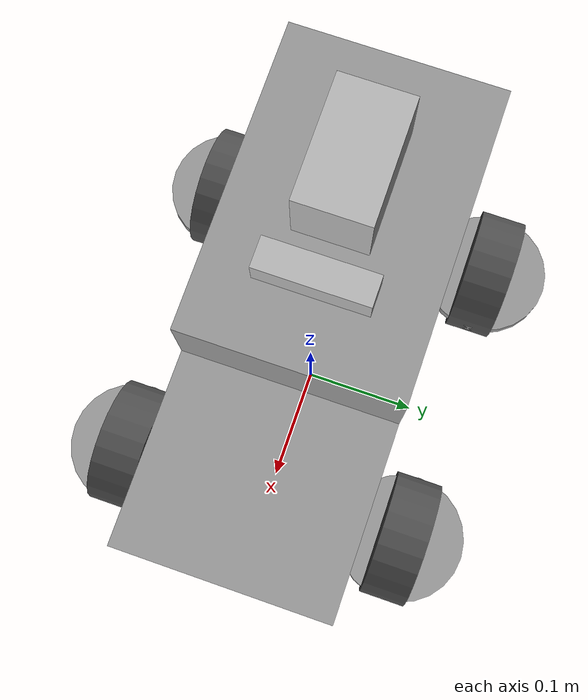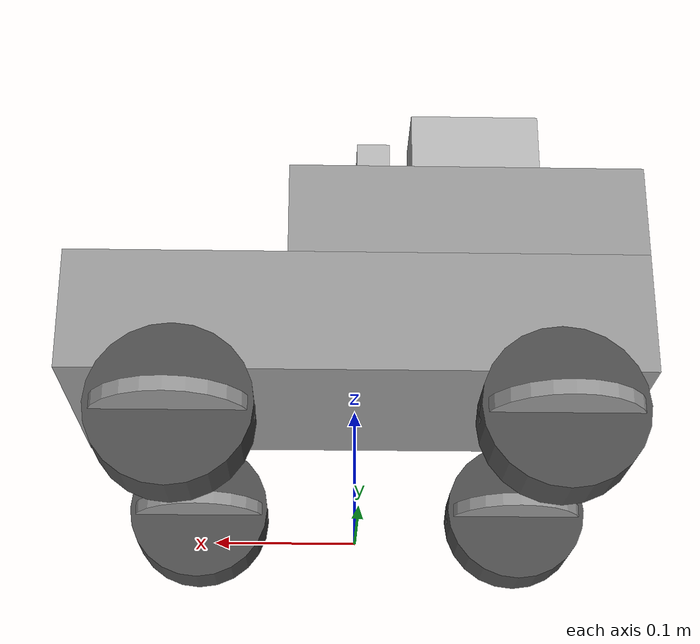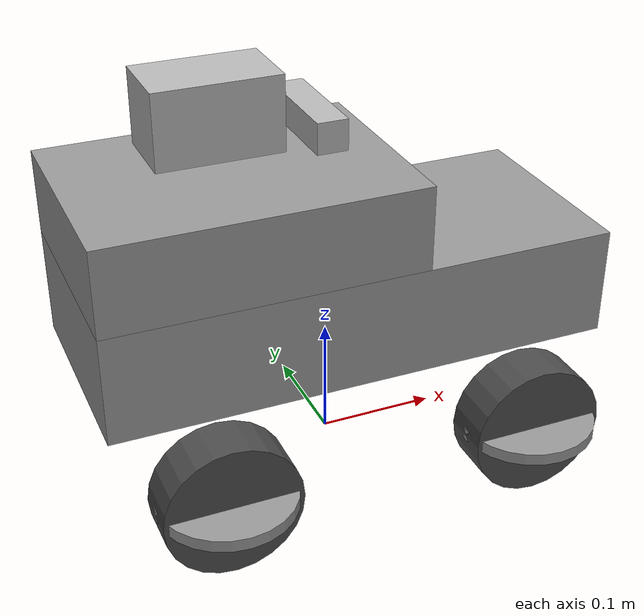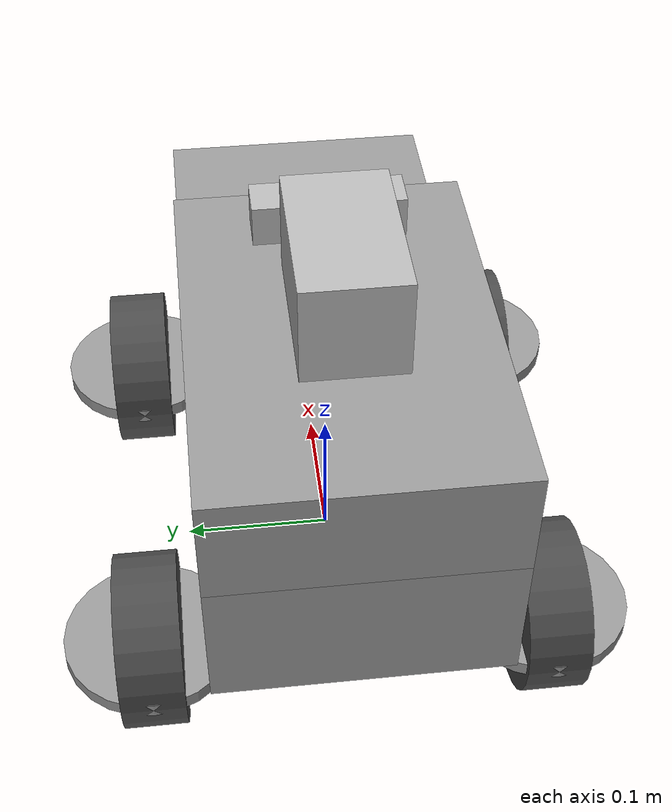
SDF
<sdf version='1.7'>
  <model name='rccar_bronco'>
    <link name='base_link'>
      <inertial>
        <pose>-0.121003 7.1e-05 0.052732 0 -0 0</pose>
        <mass>17.672</mass>
        <inertia>
          <ixx>0.300155</ixx>
          <ixy>-0.000135705</ixy>
          <ixz>0.00746289</ixz>
          <iyy>0.0859612</iyy>
          <iyz>-0.000300847</iyz>
          <izz>0.329304</izz>
        </inertia>
      </inertial>
      <collision name='base_link_collision'>
        <pose>-0.21 -0.09 0.11 0 -0 0</pose>
        <geometry>
          <box>
            <size>0.42 0.18 0.16</size>
          </box>
        </geometry>
        <surface>
          <contact>
            <ode/>
          </contact>
          <friction>
            <ode/>
          </friction>
        </surface>
      </collision>
      <collision name='base_link_fixed_joint_lump__camera_link_collision_1'>
        <pose>-0.0133 0 0.2915 0 -0 0</pose>
        <geometry>
          <box>
            <size>0.02505 0.09 0.025</size>
          </box>
        </geometry>
        <surface>
          <contact>
            <ode/>
          </contact>
          <friction>
            <ode/>
          </friction>
        </surface>
      </collision>
      <collision name='base_link_fixed_joint_lump__rear_left_mount_collision_2'>
        <pose>-0.133 0.126 0.055 0 -0 0</pose>
        <geometry>
          <cylinder>
            <length>0.01</length>
            <radius>0.055</radius>
          </cylinder>
        </geometry>
        <surface>
          <contact>
            <ode/>
          </contact>
          <friction>
            <ode/>
          </friction>
        </surface>
      </collision>
      <collision name='base_link_fixed_joint_lump__rear_right_mount_collision_3'>
        <pose>-0.133 -0.126 0.055 0 -0 0</pose>
        <geometry>
          <cylinder>
            <length>0.01</length>
            <radius>0.055</radius>
          </cylinder>
        </geometry>
        <surface>
          <contact>
            <ode/>
          </contact>
          <friction>
            <ode/>
          </friction>
        </surface>
      </collision>
      <visual name='base_link_visual'>
        <pose>0 0 0.145 0 -0 0</pose>
        <geometry>
          <box>
            <size>0.42 0.18 0.09</size>
          </box>
        </geometry>
        <material>
          <script>
            <name>Gazebo/Grey</name>
            <uri>file://media/materials/scripts/gazebo.material</uri>
          </script>
        </material>
      </visual>
      <visual name='base_link_visual_1'>
        <pose>-0.08 0 0.225 0 -0 0</pose>
        <geometry>
          <box>
            <size>0.26 0.18 0.07</size>
          </box>
        </geometry>
        <material>
          <script>
            <name>Gazebo/Grey</name>
            <uri>file://media/materials/scripts/gazebo.material</uri>
          </script>
        </material>
      </visual>
      <visual name='base_link_fixed_joint_lump__gps_link_visual_2'>
        <pose>0.151 0 0.152 0 -0 0</pose>
        <geometry>
          <box>
            <size>0.055 0.06 0.0225</size>
          </box>
        </geometry>
        <material>
          <script>
            <name>Gazebo/Black</name>
            <uri>file://media/materials/scripts/gazebo.material</uri>
          </script>
        </material>
      </visual>
      <visual name='base_link_fixed_joint_lump__livox_frame_visual_3'>
        <pose>-0.094 0 0.309 0 -0 0</pose>
        <geometry>
          <box>
            <size>0.1 0.06 0.06</size>
          </box>
        </geometry>
      </visual>
      <visual name='base_link_fixed_joint_lump__camera_link_visual_4'>
        <pose>-0.0133 0 0.2915 0 -0 0</pose>
        <geometry>
          <box>
            <size>0.02505 0.09 0.025</size>
          </box>
        </geometry>
      </visual>
      <visual name='base_link_fixed_joint_lump__rear_left_mount_visual_5'>
        <pose>-0.133 0.126 0.055 0 -0 0</pose>
        <geometry>
          <cylinder>
            <length>0.01</length>
            <radius>0.055</radius>
          </cylinder>
        </geometry>
        <material>
          <script>
            <name>Gazebo/Grey</name>
            <uri>file://media/materials/scripts/gazebo.material</uri>
          </script>
        </material>
      </visual>
      <visual name='base_link_fixed_joint_lump__rear_right_mount_visual_6'>
        <pose>-0.133 -0.126 0.055 0 -0 0</pose>
        <geometry>
          <cylinder>
            <length>0.01</length>
            <radius>0.055</radius>
          </cylinder>
        </geometry>
        <material>
          <script>
            <name>Gazebo/Grey</name>
            <uri>file://media/materials/scripts/gazebo.material</uri>
          </script>
        </material>
      </visual>
      <sensor name='ublox_gps' type='gps'>
        <always_on>1</always_on>
        <update_rate>5</update_rate>
        <plugin name='gazebo_ros_gps_sensor' filename='libgazebo_ros_gps_sensor.so'>
          <frame_name>gps_link</frame_name>
          <ros>
            <remapping>~/out:=/gnss/fix_raw</remapping>
          </ros>
        </plugin>
        <pose>0.151 0 0.152 0 -0 0</pose>
      </sensor>
      <gravity>1</gravity>
      <sensor name='bno055_imu' type='imu'>
        <always_on>1</always_on>
        <update_rate>100</update_rate>
        <plugin name='bno055_imu_plugin' filename='libgazebo_ros_imu_sensor.so'>
          <frame_name>imu_link</frame_name>
          <ros>
            <remapping>~/out:=/bno055/imu_raw</remapping>
          </ros>
        </plugin>
        <pose>-0.15 0 0.17 0 -0 0</pose>
      </sensor>
      <gravity>1</gravity>
      <sensor name='lidar_imu' type='imu'>
        <always_on>1</always_on>
        <update_rate>200</update_rate>
        <plugin name='lidar_imu_plugin' filename='libgazebo_ros_imu_sensor.so'>
          <frame_name>livox_frame</frame_name>
          <ros>
            <remapping>~/out:=/lidar/imu_raw</remapping>
          </ros>
        </plugin>
        <pose>-0.094 0 0.309 0 -0 0</pose>
      </sensor>
      <sensor name='livox_frame' type='ray'>
        <visualize>1</visualize>
        <update_rate>10</update_rate>
        <plugin name='livox_frame_plugin' filename='libros2_livox.so'>
          <ray>
            <scan>
              <horizontal>
                <samples>100</samples>
                <resolution>1</resolution>
                <min_angle>0</min_angle>
                <max_angle>6.2831852</max_angle>
              </horizontal>
              <vertical>
                <samples>360</samples>
                <resolution>1</resolution>
                <min_angle>-0.12601276984444446</min_angle>
                <max_angle>0.9637707965111111</max_angle>
              </vertical>
            </scan>
            <range>
              <min>0.1</min>
              <max>200.0</max>
              <resolution>0.002</resolution>
            </range>
            <noise>
              <type>gaussian</type>
              <mean>0.0</mean>
              <stddev>0.01</stddev>
            </noise>
          </ray>
          <visualize>0</visualize>
          <samples>40000</samples>
          <downsample>1</downsample>
          <csv_file_name>/home/docker/mnt/rccar_ws/install/rccar_description/share/rccar_description/scan_mode/mid360.csv</csv_file_name>
          <topic>lidar/points_raw</topic>
        </plugin>
        <pose>-0.094 0 0.309 0 -0 0</pose>
      </sensor>
      <sensor name='cameradepth' type='depth'>
        <camera name='camera'>
          <horizontal_fov>1.57</horizontal_fov>
          <image>
            <width>640</width>
            <height>480</height>
          </image>
          <clip>
            <near>0.1</near>
            <far>100</far>
          </clip>
          <noise>
            <type>gaussian</type>
            <mean>0</mean>
            <stddev>0.1</stddev>
          </noise>
        </camera>
        <always_on>1</always_on>
        <update_rate>30</update_rate>
        <visualize>0</visualize>
        <pose>-0.0133 0.0175 0.2915 0 -0 0</pose>
      </sensor>
      <sensor name='cameracolor' type='camera'>
        <camera name='camera'>
          <horizontal_fov>1.57</horizontal_fov>
          <image>
            <width>640</width>
            <height>480</height>
            <format>RGB_INT8</format>
          </image>
          <clip>
            <near>0.1</near>
            <far>100</far>
          </clip>
          <noise>
            <type>gaussian</type>
            <mean>0</mean>
            <stddev>0.007</stddev>
          </noise>
        </camera>
        <always_on>1</always_on>
        <update_rate>30</update_rate>
        <visualize>1</visualize>
        <pose>-0.0133 0.0175 0.2915 0 -0 0</pose>
      </sensor>
      <sensor name='cameraired1' type='camera'>
        <camera name='camera'>
          <horizontal_fov>1.57</horizontal_fov>
          <image>
            <width>640</width>
            <height>480</height>
            <format>L_INT8</format>
          </image>
          <clip>
            <near>0.1</near>
            <far>100</far>
          </clip>
          <noise>
            <type>gaussian</type>
            <mean>0</mean>
            <stddev>0.05</stddev>
          </noise>
        </camera>
        <always_on>1</always_on>
        <update_rate>1</update_rate>
        <visualize>0</visualize>
        <pose>-0.0133 0.0175 0.2915 0 -0 0</pose>
      </sensor>
      <sensor name='cameraired2' type='camera'>
        <camera name='camera'>
          <horizontal_fov>1.57</horizontal_fov>
          <image>
            <width>640</width>
            <height>480</height>
            <format>L_INT8</format>
          </image>
          <clip>
            <near>0.1</near>
            <far>100</far>
          </clip>
          <noise>
            <type>gaussian</type>
            <mean>0</mean>
            <stddev>0.05</stddev>
          </noise>
        </camera>
        <always_on>1</always_on>
        <update_rate>1</update_rate>
        <visualize>0</visualize>
        <pose>-0.0133 0.0175 0.2915 0 -0 0</pose>
      </sensor>
      <gravity>1</gravity>
      <sensor name='camera_imu' type='imu'>
        <always_on>1</always_on>
        <update_rate>200</update_rate>
        <plugin name='camera_imu_plugin' filename='libgazebo_ros_imu_sensor.so'>
          <frame_name>camera_imu_optical_frame</frame_name>
          <ros>
            <remapping>~/out:=/camera/imu_raw</remapping>
          </ros>
        </plugin>
        <pose>-0.02504 0.01198 0.2966 -1.5708 -0 -1.5708</pose>
      </sensor>
    </link>
    <joint name='front_left_mount_joint' type='revolute'>
      <pose relative_to='base_link'>0.123 0.126 0.055 0 -0 0</pose>
      <parent>base_link</parent>
      <child>front_left_mount</child>
      <axis>
        <xyz>0 0 1</xyz>
        <limit>
          <lower>-0.6458</lower>
          <upper>0.6458</upper>
          <effort>4.2</effort>
          <velocity>6.28</velocity>
        </limit>
        <dynamics>
          <spring_reference>0</spring_reference>
          <spring_stiffness>0</spring_stiffness>
        </dynamics>
      </axis>
    </joint>
    <link name='front_left_mount'>
      <pose relative_to='front_left_mount_joint'>0 0 0 0 -0 0</pose>
      <inertial>
        <pose>0 0 0 0 -0 0</pose>
        <mass>8</mass>
        <inertia>
          <ixx>0.01</ixx>
          <ixy>0</ixy>
          <ixz>0</ixz>
          <iyy>0.01</iyy>
          <iyz>0</iyz>
          <izz>0.01</izz>
        </inertia>
      </inertial>
      <collision name='front_left_mount_collision'>
        <pose>0 0 0 0 -0 0</pose>
        <geometry>
          <cylinder>
            <length>0.01</length>
            <radius>0.055</radius>
          </cylinder>
        </geometry>
        <surface>
          <contact>
            <ode/>
          </contact>
          <friction>
            <ode/>
          </friction>
        </surface>
      </collision>
      <visual name='front_left_mount_visual'>
        <pose>0 0 0 0 -0 0</pose>
        <geometry>
          <cylinder>
            <length>0.01</length>
            <radius>0.055</radius>
          </cylinder>
        </geometry>
        <material>
          <script>
            <name>Gazebo/Grey</name>
            <uri>file://media/materials/scripts/gazebo.material</uri>
          </script>
        </material>
      </visual>
    </link>
    <joint name='front_left_wheel_joint' type='revolute'>
      <pose relative_to='front_left_mount'>0 0 0 0 -0 0</pose>
      <parent>front_left_mount</parent>
      <child>front_left_wheel</child>
      <axis>
        <xyz>0 1 0</xyz>
        <limit>
          <lower>-1e+16</lower>
          <upper>1e+16</upper>
        </limit>
        <dynamics>
          <spring_reference>0</spring_reference>
          <spring_stiffness>0</spring_stiffness>
        </dynamics>
      </axis>
    </joint>
    <link name='front_left_wheel'>
      <pose relative_to='front_left_wheel_joint'>0 0 0 0 -0 0</pose>
      <inertial>
        <pose>0 0 0 0 -0 0</pose>
        <mass>0.5</mass>
        <inertia>
          <ixx>0.01</ixx>
          <ixy>0</ixy>
          <ixz>0</ixz>
          <iyy>0.01</iyy>
          <iyz>0</iyz>
          <izz>0.01</izz>
        </inertia>
      </inertial>
      <collision name='front_left_wheel_collision'>
        <pose>0 0 0 1.5708 -0 0</pose>
        <geometry>
          <cylinder>
            <length>0.04</length>
            <radius>0.055</radius>
          </cylinder>
        </geometry>
        <surface>
          <contact>
            <ode/>
          </contact>
          <friction>
            <ode/>
          </friction>
        </surface>
      </collision>
      <visual name='front_left_wheel_visual'>
        <pose>0 0 0 1.5708 -0 0</pose>
        <geometry>
          <cylinder>
            <length>0.04</length>
            <radius>0.055</radius>
          </cylinder>
        </geometry>
        <material>
          <script>
            <name>Gazebo/DarkGrey</name>
            <uri>file://media/materials/scripts/gazebo.material</uri>
          </script>
        </material>
      </visual>
    </link>
    <joint name='front_right_mount_joint' type='revolute'>
      <pose relative_to='base_link'>0.123 -0.126 0.055 0 -0 0</pose>
      <parent>base_link</parent>
      <child>front_right_mount</child>
      <axis>
        <xyz>0 0 1</xyz>
        <limit>
          <lower>-0.6458</lower>
          <upper>0.6458</upper>
          <effort>4.2</effort>
          <velocity>6.28</velocity>
        </limit>
        <dynamics>
          <spring_reference>0</spring_reference>
          <spring_stiffness>0</spring_stiffness>
        </dynamics>
      </axis>
    </joint>
    <link name='front_right_mount'>
      <pose relative_to='front_right_mount_joint'>0 0 0 0 -0 0</pose>
      <inertial>
        <pose>0 0 0 0 -0 0</pose>
        <mass>8</mass>
        <inertia>
          <ixx>0.01</ixx>
          <ixy>0</ixy>
          <ixz>0</ixz>
          <iyy>0.01</iyy>
          <iyz>0</iyz>
          <izz>0.01</izz>
        </inertia>
      </inertial>
      <collision name='front_right_mount_collision'>
        <pose>0 0 0 0 -0 0</pose>
        <geometry>
          <cylinder>
            <length>0.01</length>
            <radius>0.055</radius>
          </cylinder>
        </geometry>
        <surface>
          <contact>
            <ode/>
          </contact>
          <friction>
            <ode/>
          </friction>
        </surface>
      </collision>
      <visual name='front_right_mount_visual'>
        <pose>0 0 0 0 -0 0</pose>
        <geometry>
          <cylinder>
            <length>0.01</length>
            <radius>0.055</radius>
          </cylinder>
        </geometry>
        <material>
          <script>
            <name>Gazebo/Grey</name>
            <uri>file://media/materials/scripts/gazebo.material</uri>
          </script>
        </material>
      </visual>
    </link>
    <joint name='front_right_wheel_joint' type='revolute'>
      <pose relative_to='front_right_mount'>0 0 0 0 -0 0</pose>
      <parent>front_right_mount</parent>
      <child>front_right_wheel</child>
      <axis>
        <xyz>0 1 0</xyz>
        <limit>
          <lower>-1e+16</lower>
          <upper>1e+16</upper>
        </limit>
        <dynamics>
          <spring_reference>0</spring_reference>
          <spring_stiffness>0</spring_stiffness>
        </dynamics>
      </axis>
    </joint>
    <link name='front_right_wheel'>
      <pose relative_to='front_right_wheel_joint'>0 0 0 0 -0 0</pose>
      <inertial>
        <pose>0 0 0 0 -0 0</pose>
        <mass>0.5</mass>
        <inertia>
          <ixx>0.01</ixx>
          <ixy>0</ixy>
          <ixz>0</ixz>
          <iyy>0.01</iyy>
          <iyz>0</iyz>
          <izz>0.01</izz>
        </inertia>
      </inertial>
      <collision name='front_right_wheel_collision'>
        <pose>0 0 0 1.5708 -0 0</pose>
        <geometry>
          <cylinder>
            <length>0.04</length>
            <radius>0.055</radius>
          </cylinder>
        </geometry>
        <surface>
          <contact>
            <ode/>
          </contact>
          <friction>
            <ode/>
          </friction>
        </surface>
      </collision>
      <visual name='front_right_wheel_visual'>
        <pose>0 0 0 1.5708 -0 0</pose>
        <geometry>
          <cylinder>
            <length>0.04</length>
            <radius>0.055</radius>
          </cylinder>
        </geometry>
        <material>
          <script>
            <name>Gazebo/DarkGrey</name>
            <uri>file://media/materials/scripts/gazebo.material</uri>
          </script>
        </material>
      </visual>
    </link>
    <joint name='rear_left_wheel_joint' type='revolute'>
      <pose relative_to='base_link'>-0.133 0.126 0.055 0 -0 0</pose>
      <parent>base_link</parent>
      <child>rear_left_wheel</child>
      <axis>
        <xyz>0 1 0</xyz>
        <limit>
          <lower>-1e+16</lower>
          <upper>1e+16</upper>
        </limit>
        <dynamics>
          <spring_reference>0</spring_reference>
          <spring_stiffness>0</spring_stiffness>
        </dynamics>
      </axis>
    </joint>
    <link name='rear_left_wheel'>
      <pose relative_to='rear_left_wheel_joint'>0 0 0 0 -0 0</pose>
      <inertial>
        <pose>0 0 0 0 -0 0</pose>
        <mass>0.5</mass>
        <inertia>
          <ixx>0.01</ixx>
          <ixy>0</ixy>
          <ixz>0</ixz>
          <iyy>0.01</iyy>
          <iyz>0</iyz>
          <izz>0.01</izz>
        </inertia>
      </inertial>
      <collision name='rear_left_wheel_collision'>
        <pose>0 0 0 1.5708 -0 0</pose>
        <geometry>
          <cylinder>
            <length>0.04</length>
            <radius>0.055</radius>
          </cylinder>
        </geometry>
        <surface>
          <contact>
            <ode/>
          </contact>
          <friction>
            <ode/>
          </friction>
        </surface>
      </collision>
      <visual name='rear_left_wheel_visual'>
        <pose>0 0 0 1.5708 -0 0</pose>
        <geometry>
          <cylinder>
            <length>0.04</length>
            <radius>0.055</radius>
          </cylinder>
        </geometry>
        <material>
          <script>
            <name>Gazebo/DarkGrey</name>
            <uri>file://media/materials/scripts/gazebo.material</uri>
          </script>
        </material>
      </visual>
    </link>
    <joint name='rear_right_wheel_joint' type='revolute'>
      <pose relative_to='base_link'>-0.133 -0.126 0.055 0 -0 0</pose>
      <parent>base_link</parent>
      <child>rear_right_wheel</child>
      <axis>
        <xyz>0 1 0</xyz>
        <limit>
          <lower>-1e+16</lower>
          <upper>1e+16</upper>
        </limit>
        <dynamics>
          <spring_reference>0</spring_reference>
          <spring_stiffness>0</spring_stiffness>
        </dynamics>
      </axis>
    </joint>
    <link name='rear_right_wheel'>
      <pose relative_to='rear_right_wheel_joint'>0 0 0 0 -0 0</pose>
      <inertial>
        <pose>0 0 0 0 -0 0</pose>
        <mass>0.5</mass>
        <inertia>
          <ixx>0.01</ixx>
          <ixy>0</ixy>
          <ixz>0</ixz>
          <iyy>0.01</iyy>
          <iyz>0</iyz>
          <izz>0.01</izz>
        </inertia>
      </inertial>
      <collision name='rear_right_wheel_collision'>
        <pose>0 0 0 1.5708 -0 0</pose>
        <geometry>
          <cylinder>
            <length>0.04</length>
            <radius>0.055</radius>
          </cylinder>
        </geometry>
        <surface>
          <contact>
            <ode/>
          </contact>
          <friction>
            <ode/>
          </friction>
        </surface>
      </collision>
      <visual name='rear_right_wheel_visual'>
        <pose>0 0 0 1.5708 -0 0</pose>
        <geometry>
          <cylinder>
            <length>0.04</length>
            <radius>0.055</radius>
          </cylinder>
        </geometry>
        <material>
          <script>
            <name>Gazebo/DarkGrey</name>
            <uri>file://media/materials/scripts/gazebo.material</uri>
          </script>
        </material>
      </visual>
    </link>
    <plugin name='gazebo_realsense' filename='librealsense_gazebo_plugin.so'>
      <prefix>camera</prefix>
      <depthUpdateRate>30.0</depthUpdateRate>
      <colorUpdateRate>30.0</colorUpdateRate>
      <infraredUpdateRate>1.0</infraredUpdateRate>
      <depthTopicName>camera/depth/image_rect_raw</depthTopicName>
      <depthCameraInfoTopicName>camera/depth/camera_info</depthCameraInfoTopicName>
      <colorTopicName>camera/color/image_raw</colorTopicName>
      <colorCameraInfoTopicName>camera/color/camera_info</colorCameraInfoTopicName>
      <infrared1TopicName>camera/infra1/image_raw</infrared1TopicName>
      <infrared1CameraInfoTopicName>camera/infra1/camera_info</infrared1CameraInfoTopicName>
      <infrared2TopicName>camera/infra2/image_raw</infrared2TopicName>
      <infrared2CameraInfoTopicName>camera/infra2/camera_info</infrared2CameraInfoTopicName>
      <colorOpticalframeName>camera_color_optical_frame</colorOpticalframeName>
      <depthOpticalframeName>camera_depth_optical_frame</depthOpticalframeName>
      <infrared1OpticalframeName>camera_left_ir_optical_frame</infrared1OpticalframeName>
      <infrared2OpticalframeName>camera_right_ir_optical_frame</infrared2OpticalframeName>
      <rangeMinDepth>0.3</rangeMinDepth>
      <rangeMaxDepth>3.0</rangeMaxDepth>
      <pointCloud>1</pointCloud>
      <pointCloudTopicName>camera/depth/color/points</pointCloudTopicName>
      <pointCloudCutoff>0.3</pointCloudCutoff>
    </plugin>
    <static>0</static>
    <plugin name='gazebo_ros_ackermann_drive' filename='libgazebo_ros_ackermann_drive.so'>
      <ros>
        <remapping>cmd_vel:=cmd_vel</remapping>
        <remapping>odom:=odometry/simulation</remapping>
        <remapping>distance:=distance</remapping>
      </ros>
      <update_rate>100.0</update_rate>
      <front_left_joint>front_left_wheel_joint</front_left_joint>
      <front_right_joint>front_right_wheel_joint</front_right_joint>
      <rear_left_joint>rear_left_wheel_joint</rear_left_joint>
      <rear_right_joint>rear_right_wheel_joint</rear_right_joint>
      <left_steering_joint>front_left_mount_joint</left_steering_joint>
      <right_steering_joint>front_right_mount_joint</right_steering_joint>
      <max_steer>0.6458</max_steer>
      <max_steering_angle>7.85</max_steering_angle>
      <max_speed>2.0</max_speed>
      <left_steering_pid_gain>6 0 0</left_steering_pid_gain>
      <left_steering_i_range>0 0</left_steering_i_range>
      <right_steering_pid_gain>6 0 0</right_steering_pid_gain>
      <right_steering_i_range>0 0</right_steering_i_range>
      <linear_velocity_pid_gain>10 0 0</linear_velocity_pid_gain>
      <linear_velocity_i_range>0 0</linear_velocity_i_range>
      <publish_odom>1</publish_odom>
      <publish_odom_tf>0</publish_odom_tf>
      <publish_wheel_tf>1</publish_wheel_tf>
      <publish_distance>1</publish_distance>
      <odometry_frame>odom</odometry_frame>
      <robot_base_frame>base_link</robot_base_frame>
    </plugin>
  </model>
</sdf>
